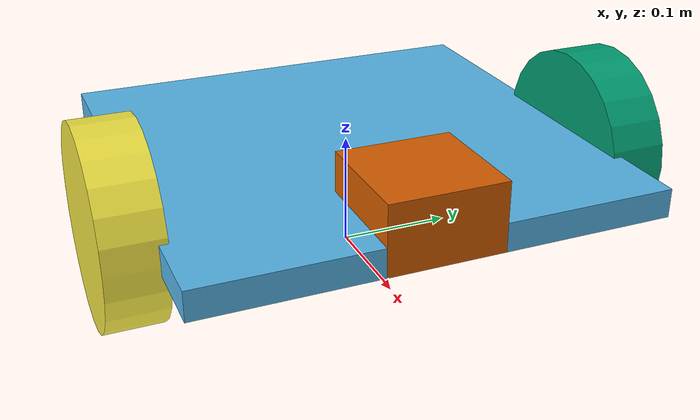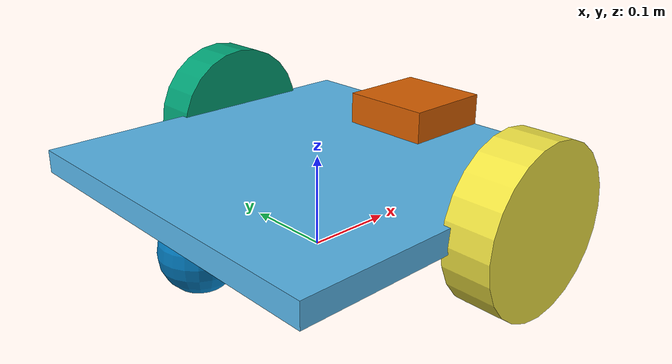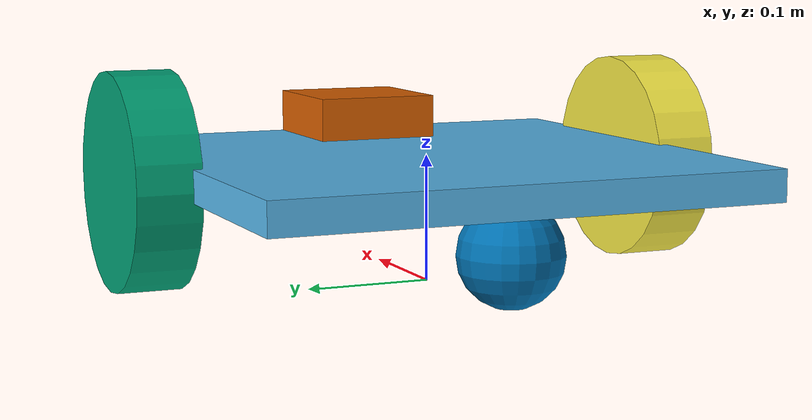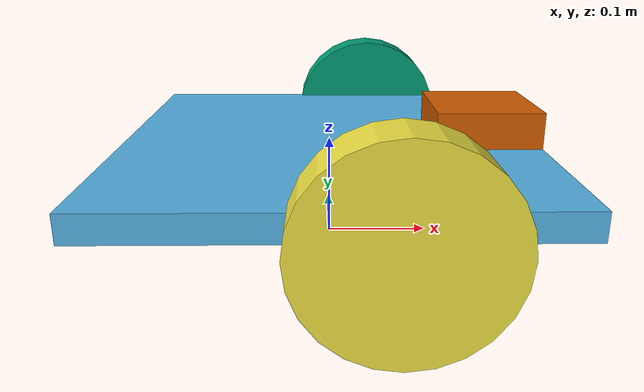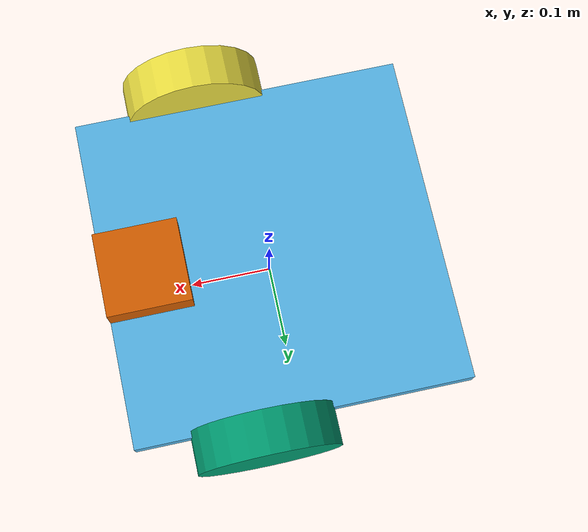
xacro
<?xml version="1.0" ?>
<robot xmlns:xacro ="http://www.ros.org/wiki/xacro" name = 'workbot'>

  <xacro:property name = 'base_width' value='0.4'/>
  <xacro:property name = 'base_length' value = '0.4'/>
  <xacro:property name = 'base_height' value = '0.025'/>

  <xacro:property name= 'wheel_radius' value = '0.085'/>
  <xacro:property name ='wheel_length' value = '0.05'/>

  <xacro:property name = 'caster_wheel_radius' value='0.04'/>
  <xacro:property name='caster_wheel_joint_offset' value='-0.15'/>

  <xacro:property name='wheel_joint_offset' value = '0.05'/>
  <xacro:property name="wheel_separation" value="0.325"/>
  <xacro:property name='base_wheel_gap' value='0.0175'/>

  <xacro:property name='laser_size_x' value='0.1'/>
  <xacro:property name='laser_size_y' value='0.1'/>
  <xacro:property name='laser_size_z' value='0.06'/>
  <xacro:property name='laser_origin_x' value='0.15'/>
  <xacro:property name='laser_origin_y' value='0'/>
  <xacro:property name='laser_origin_z' value='0.0175'/>

  <xacro:macro name = 'box_inertia' params = 'mass x y z'>
    <inertial>
      <mass value = '${mass}'/>
      <inertia ixx = '${mass / 12 * (z*z + y*y)}' ixy = '0.0' ixz = '0.0'
               iyy = '${mass / 12 * (x*x + y*y)}' iyz = '0.0'
               izz = '${mass / 12 * (x*x + z*z)}' />
    </inertial>
  </xacro:macro>

  <xacro:macro name='cylinder_inertia' params ='mass r l'>
    <inertial>
      <mass value = '${mass}'/>
      <inertia ixx='${mass*(3*r*r + l*l) / 12}' ixy='0.0' ixz='0.0'
               iyy='${mass*(3*r*r + l*l) / 12}' iyz='0.0'
               izz='${mass*r*r / 2}' />
    </inertial>
  </xacro:macro>

  <xacro:macro name='sphere_inertia' params='mass r'>
    <inertial>
      <mass value = '${mass}'/>
      <inertia ixx='${mass*2*(r*r)/5}' ixy='0.0' ixz='0.0'
               iyy='${mass*2*(r*r)/5}' iyz='0.0'
               izz='${mass*2*(r*r)/5}' />
    </inertial>
  </xacro:macro>

  <xacro:macro name='wheel' params='prefix reflect'>
    <link name='${prefix}_wheel'>
      <visual>
        <origin xyz='0 0 0' rpy = '${pi/2} 0 0'/>
        <geometry>
          <cylinder radius='${wheel_radius}' length='${wheel_length}'/>
        </geometry>
      </visual>

      <collision>
        <origin xyz='0 0 0' rpy = '${pi/2} 0 0'/>
        <geometry>
          <cylinder radius='${wheel_radius}' length='${wheel_length}'/>
        </geometry>
      </collision>

      <xacro:cylinder_inertia mass='0.5' r='${wheel_radius}' l='${wheel_length}'/>
    </link>

    <joint name='${prefix}_wheel_joint' type='continuous'>
      <origin xyz='${wheel_joint_offset} ${((base_width/2)+base_wheel_gap)*reflect} -0.005' rpy='0 0 0'/>
      <axis xyz='0 1 0' rpy='0 0 0'/>
      <parent link='base_link'/>
      <child link='${prefix}_wheel'/>
    </joint>
  </xacro:macro>

  <link name = 'base_footprint'>
    <!--xacro:box_inertia mass='10' x='0.001' y='0.001' z='0.001'/-->
    <visual>
      <origin xyz='0 0 0' rpy='0 0 0'/>
      <geometry>
        <box size = '0.001 0.001 0.001'/>
      </geometry>
    </visual>
  </link>

  <link name = 'base_link'>
    <xacro:box_inertia mass='1' x='${base_length}' y='${base_width}' z='${base_height}'/>

    <visual>
      <geometry>
        <box size = '${base_length} ${base_width} ${base_height}'/>
      </geometry>
    </visual>

    <collision>
      <geometry>
        <box size = '${base_length} ${base_width} ${base_height}'/>
      </geometry>
    </collision>
  </link>

  <joint name='base_link_joint' type ='fixed'>
    <origin xyz = '0 0 ${wheel_radius + 0.005}' rpy='0 0 0'/>
    <parent link='base_footprint'/>
    <child link='base_link'/>
  </joint>

  <xacro:wheel prefix="left" reflect="1"/>
  <xacro:wheel prefix="right" reflect="-1"/>

  <link name='caster_wheel'>
    <visual>
      <origin xyz='0 0 0' rpy='0 0 0'/>
      <geometry>
        <sphere radius='${caster_wheel_radius}'/>
      </geometry>
    </visual>

    <collision>
      <origin xyz='0 0 0' rpy='0 0 0'/>
      <geometry>
        <sphere radius='${caster_wheel_radius}'/>
      </geometry>
    </collision>

    <xacro:sphere_inertia mass='0.8' r='${caster_wheel_radius}'/>
  </link>

  <joint name='caster_wheel_joint' type='continuous'>
    <origin xyz='${caster_wheel_joint_offset} 0 -${caster_wheel_radius + 0.005}' rpy='0 0 0'/>
    <axis xyz= '0 1 0' rpy='0 0 0'/>
    <parent link='base_link'/>
    <child link='caster_wheel'/>
  </joint>

  <link name='sensor_laser'>
    <visual>
      <geometry>
        <box size='${laser_size_x} ${laser_size_y} ${laser_size_z}'/>
      </geometry>
    </visual>

    <xacro:box_inertia mass='0.2' x='${laser_size_x}' y='${laser_size_y}' z='${laser_size_z}'/>
  </link>

  <joint name='sensor_laser_joint' type='fixed'>
    <origin xyz='${laser_origin_x} ${laser_origin_y} ${laser_origin_z}' rpy='0 0 0'/>
    <parent link='base_link'/>
    <child link='sensor_laser'/>
  </joint>

  <xacro:include filename='$(find mybot_description)/urdf/robot_gazebo_plugins.xacro'/>
</robot>
